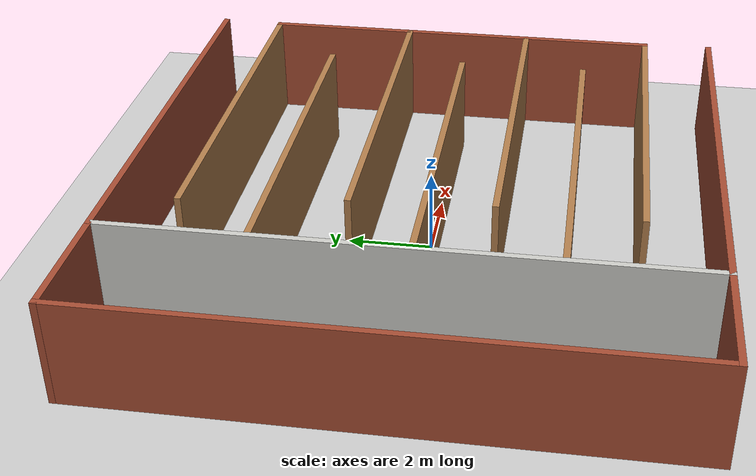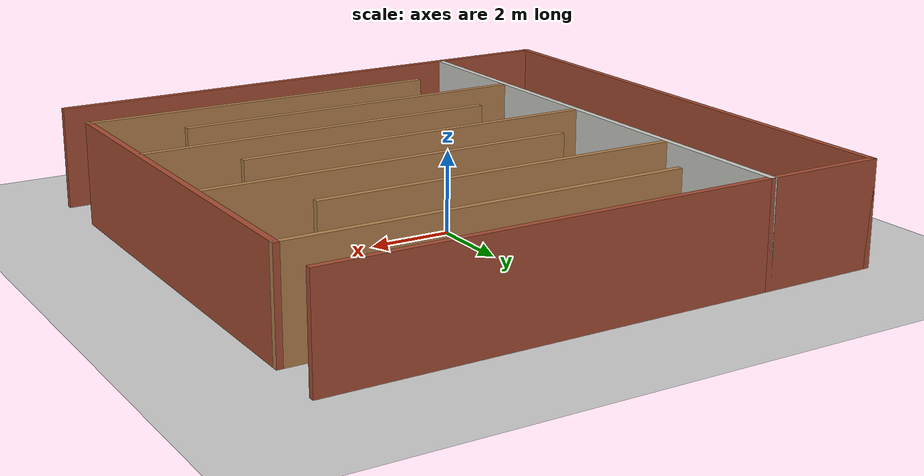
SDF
<sdf version="1.4">
 <world name="default">
  <light name="sun" type="directional">
   <pose>0 0 10 0 -0 0</pose>
   <diffuse>0.8 0.8 0.8 1</diffuse>
   <specular>0.2 0.2 0.2 1</specular>
   <attenuation>
    <range>1000</range>
    <constant>0.9</constant>
    <linear>0.01</linear>
    <quadratic>0.001</quadratic>
   </attenuation>
   <direction>0.5 0.1 -0.9</direction>
  </light>
  <model name="ground_plane">
   <static>1</static>
   <link name="link">
    <collision name="collision">
     <geometry><plane><normal>0 0 1</normal><size>100 100</size></plane></geometry>
     <surface><friction><ode><mu>100</mu><mu2>50</mu2></ode></friction></surface>
    </collision>
    <visual name="visual">
     <cast_shadows>0</cast_shadows>
     <geometry><plane><normal>0 0 1</normal><size>100 100</size></plane></geometry>
     <material>
      <script><uri>file://media/materials/scripts/gazebo.material</uri><name>Gazebo/Grey</name></script>
     </material>
    </visual>
    <velocity_decay><linear>0</linear><angular>0</angular></velocity_decay>
   </link>
  </model>
  <scene><ambient>0.4 0.4 0.4 1</ambient><background>0.7 0.7 0.7 1</background><shadows>0</shadows></scene>
  <physics type="ode">
   <max_step_size>0.01</max_step_size>
   <real_time_factor>1</real_time_factor>
   <real_time_update_rate>0</real_time_update_rate>
   <gravity>0 0 -9.8</gravity>
  </physics>
  <include><uri>model://hyper_market</uri></include>
 </world>
</sdf>

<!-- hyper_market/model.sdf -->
<sdf version='1.4'>
  <model name='Futuristic_Market'>
    <pose>0.140392 0.114357 0 0 -0 0</pose>
    <link name='Wall_12'>
      <collision name='Wall_12_Collision'>
        <geometry>
          <box>
            <size>10.75 0.15 2.5</size>
          </box>
        </geometry>
        <pose>0 0 1.25 0 -0 0</pose>
      </collision>
      <visual name='Wall_12_Visual'>
        <pose>0 0 1.25 0 -0 0</pose>
        <geometry>
          <box>
            <size>10.75 0.15 2.5</size>
          </box>
        </geometry>
        <material>
          <script>
            <uri>file://media/materials/scripts/gazebo.material</uri>
            <name>Gazebo/Bricks</name>
          </script>
          <ambient>1 1 1 1</ambient>
        </material>
        <meta>
          <layer>0</layer>
        </meta>
      </visual>
      <pose>1.425 -6.675 0 0 -0 0</pose>
    </link>
    <link name='Wall_14'>
      <collision name='Wall_14_Collision'>
        <geometry>
          <box>
            <size>10.75 0.15 2.5</size>
          </box>
        </geometry>
        <pose>0 0 1.25 0 -0 0</pose>
      </collision>
      <visual name='Wall_14_Visual'>
        <pose>0 0 1.25 0 -0 0</pose>
        <geometry>
          <box>
            <size>10.75 0.15 2.5</size>
          </box>
        </geometry>
        <material>
          <script>
            <uri>file://media/materials/scripts/gazebo.material</uri>
            <name>Gazebo/Bricks</name>
          </script>
          <ambient>1 1 1 1</ambient>
        </material>
        <meta>
          <layer>0</layer>
        </meta>
      </visual>
      <pose>1.425 6.675 0 0 -0 0</pose>
    </link>
    <link name='Wall_21'>
      <collision name='Wall_21_Collision'>
        <geometry>
          <box>
            <size>8.75 0.15 2.5</size>
          </box>
        </geometry>
        <pose>0 0 1.25 0 -0 0</pose>
      </collision>
      <visual name='Wall_21_Visual'>
        <pose>0 0 1.25 0 -0 0</pose>
        <geometry>
          <box>
            <size>8.75 0.15 2.5</size>
          </box>
        </geometry>
        <material>
          <script>
            <uri>file://media/materials/scripts/gazebo.material</uri>
            <name>Gazebo/Wood</name>
          </script>
          <ambient>1 1 1 1</ambient>
        </material>
        <meta>
          <layer>0</layer>
        </meta>
      </visual>
      <pose>0.57114 -0.226823 0 0 -0 0</pose>
    </link>
    <link name='Wall_23'>
      <collision name='Wall_23_Collision'>
        <geometry>
          <box>
            <size>9 0.15 2.5</size>
          </box>
        </geometry>
        <pose>0 0 1.25 0 -0 0</pose>
      </collision>
      <visual name='Wall_23_Visual'>
        <pose>0 0 1.25 0 -0 0</pose>
        <geometry>
          <box>
            <size>9 0.15 2.5</size>
          </box>
        </geometry>
        <material>
          <script>
            <uri>file://media/materials/scripts/gazebo.material</uri>
            <name>Gazebo/Wood</name>
          </script>
          <ambient>1 1 1 1</ambient>
        </material>
        <meta>
          <layer>0</layer>
        </meta>
      </visual>
      <pose>2.22563 1.43176 0 0 -0 3.14159</pose>
    </link>
    <link name='Wall_25'>
      <collision name='Wall_25_Collision'>
        <geometry>
          <box>
            <size>8.75 0.15 2.5</size>
          </box>
        </geometry>
        <pose>0 0 1.25 0 -0 0</pose>
      </collision>
      <visual name='Wall_25_Visual'>
        <pose>0 0 1.25 0 -0 0</pose>
        <geometry>
          <box>
            <size>8.75 0.15 2.5</size>
          </box>
        </geometry>
        <material>
          <script>
            <uri>file://media/materials/scripts/gazebo.material</uri>
            <name>Gazebo/Wood</name>
          </script>
          <ambient>1 1 1 1</ambient>
        </material>
        <meta>
          <layer>0</layer>
        </meta>
      </visual>
      <pose>0.57114 3.25084 0 0 -0 0</pose>
    </link>
    <link name='Wall_29'>
      <collision name='Wall_29_Collision'>
        <geometry>
          <box>
            <size>8.75 0.15 2.5</size>
          </box>
        </geometry>
        <pose>0 0 1.25 0 -0 0</pose>
      </collision>
      <visual name='Wall_29_Visual'>
        <pose>0 0 1.25 0 -0 0</pose>
        <geometry>
          <box>
            <size>8.75 0.15 2.5</size>
          </box>
        </geometry>
        <material>
          <script>
            <uri>file://media/materials/scripts/gazebo.material</uri>
            <name>Gazebo/Wood</name>
          </script>
          <ambient>1 1 1 1</ambient>
        </material>
        <meta>
          <layer>0</layer>
        </meta>
      </visual>
      <pose>0.57114 -3.38347 0 0 -0 0</pose>
    </link>
    <link name='Wall_3'>
      <collision name='Wall_3_Collision'>
        <geometry>
          <box>
            <size>13.5 0.15 2.5</size>
          </box>
        </geometry>
        <pose>0 0 1.25 0 -0 0</pose>
      </collision>
      <visual name='Wall_3_Visual'>
        <pose>0 0 1.25 0 -0 0</pose>
        <geometry>
          <box>
            <size>13.5 0.15 2.5</size>
          </box>
        </geometry>
        <material>
          <script>
            <uri>file://media/materials/scripts/gazebo.material</uri>
            <name>Gazebo/Bricks</name>
          </script>
          <ambient>1 1 1 1</ambient>
        </material>
        <meta>
          <layer>0</layer>
        </meta>
      </visual>
      <pose>-6.725 -0 0 0 -0 -1.5708</pose>
    </link>
    <link name='Wall_31'>
      <collision name='Wall_31_Collision'>
        <geometry>
          <box>
            <size>8.75 0.15 2.5</size>
          </box>
        </geometry>
        <pose>0 0 1.25 0 -0 0</pose>
      </collision>
      <visual name='Wall_31_Visual'>
        <pose>0 0 1.25 0 -0 0</pose>
        <geometry>
          <box>
            <size>8.75 0.15 2.5</size>
          </box>
        </geometry>
        <material>
          <script>
            <uri>file://media/materials/scripts/gazebo.material</uri>
            <name>Gazebo/Wood</name>
          </script>
          <ambient>1 1 1 1</ambient>
        </material>
        <meta>
          <layer>0</layer>
        </meta>
      </visual>
      <pose>2.29712 -1.77839 0 0 -0 3.14159</pose>
    </link>
    <link name='Wall_40'>
      <collision name='Wall_40_Collision'>
        <geometry>
          <box>
            <size>10.25 0.15 2.5</size>
          </box>
        </geometry>
        <pose>0 0 1.25 0 -0 0</pose>
      </collision>
      <visual name='Wall_40_Visual'>
        <pose>0 0 1.25 0 -0 0</pose>
        <geometry>
          <box>
            <size>10.25 0.15 2.5</size>
          </box>
        </geometry>
        <material>
          <script>
            <uri>file://media/materials/scripts/gazebo.material</uri>
            <name>Gazebo/Bricks</name>
          </script>
          <ambient>1 1 1 1</ambient>
        </material>
        <meta>
          <layer>0</layer>
        </meta>
      </visual>
      <pose>6.70413 0.061455 0 0 -0 1.5708</pose>
    </link>
    <link name='Wall_42'>
      <collision name='Wall_42_Collision'>
        <geometry>
          <box>
            <size>9 0.15 2.5</size>
          </box>
        </geometry>
        <pose>0 0 1.25 0 -0 0</pose>
      </collision>
      <visual name='Wall_42_Visual'>
        <pose>0 0 1.25 0 -0 0</pose>
        <geometry>
          <box>
            <size>9 0.15 2.5</size>
          </box>
        </geometry>
        <material>
          <script>
            <uri>file://media/materials/scripts/gazebo.material</uri>
            <name>Gazebo/Wood</name>
          </script>
          <ambient>1 1 1 1</ambient>
        </material>
        <meta>
          <layer>0</layer>
        </meta>
      </visual>
      <pose>2.27913 -4.98855 0 0 -0 3.14159</pose>
    </link>
    <link name='Wall_44'>
      <collision name='Wall_44_Collision'>
        <geometry>
          <box>
            <size>9.5 0.15 2.5</size>
          </box>
        </geometry>
        <pose>0 0 1.25 0 -0 0</pose>
      </collision>
      <visual name='Wall_44_Visual'>
        <pose>0 0 1.25 0 -0 0</pose>
        <geometry>
          <box>
            <size>9.5 0.15 2.5</size>
          </box>
        </geometry>
        <material>
          <script>
            <uri>file://media/materials/scripts/gazebo.material</uri>
            <name>Gazebo/Wood</name>
          </script>
          <ambient>1 1 1 1</ambient>
        </material>
        <meta>
          <layer>0</layer>
        </meta>
      </visual>
      <pose>2.02913 5.11145 0 0 -0 3.14159</pose>
    </link>
    <link name='Wall_7'>
      <collision name='Wall_7_Collision'>
        <geometry>
          <box>
            <size>3 0.15 2.5</size>
          </box>
        </geometry>
        <pose>0 0 1.25 0 -0 0</pose>
      </collision>
      <visual name='Wall_7_Visual'>
        <pose>0 0 1.25 0 -0 0</pose>
        <geometry>
          <box>
            <size>3 0.15 2.5</size>
          </box>
        </geometry>
        <material>
          <script>
            <uri>file://media/materials/scripts/gazebo.material</uri>
            <name>Gazebo/Bricks</name>
          </script>
          <ambient>1 1 1 1</ambient>
        </material>
        <meta>
          <layer>0</layer>
        </meta>
      </visual>
      <pose>-5.3 6.675 0 0 -0 0</pose>
    </link>
    <link name='Wall_8'>
      <collision name='Wall_8_Collision'>
        <geometry>
          <box>
            <size>13.5 0.15 2.5</size>
          </box>
        </geometry>
        <pose>0 0 1.25 0 -0 0</pose>
      </collision>
      <visual name='Wall_8_Visual'>
        <pose>0 0 1.25 0 -0 0</pose>
        <geometry>
          <box>
            <size>13.5 0.15 2.5</size>
          </box>
        </geometry>
        <material>
          <script>
            <uri>file://media/materials/scripts/gazebo.material</uri>
            <name>Gazebo/CeilingTiled</name>
          </script>
          <ambient>1 0.764706 0.305882 1</ambient>
        </material>
        <meta>
          <layer>0</layer>
        </meta>
      </visual>
      <pose>-3.875 -0 0 0 -0 -1.5708</pose>
    </link>
    <link name='Wall_9'>
      <collision name='Wall_9_Collision'>
        <geometry>
          <box>
            <size>3 0.15 2.5</size>
          </box>
        </geometry>
        <pose>0 0 1.25 0 -0 0</pose>
      </collision>
      <visual name='Wall_9_Visual'>
        <pose>0 0 1.25 0 -0 0</pose>
        <geometry>
          <box>
            <size>3 0.15 2.5</size>
          </box>
        </geometry>
        <material>
          <script>
            <uri>file://media/materials/scripts/gazebo.material</uri>
            <name>Gazebo/Bricks</name>
          </script>
          <ambient>1 1 1 1</ambient>
        </material>
        <meta>
          <layer>0</layer>
        </meta>
      </visual>
      <pose>-5.3 -6.675 0 0 -0 3.14159</pose>
    </link>
    <static>1</static>
  </model>
</sdf>
